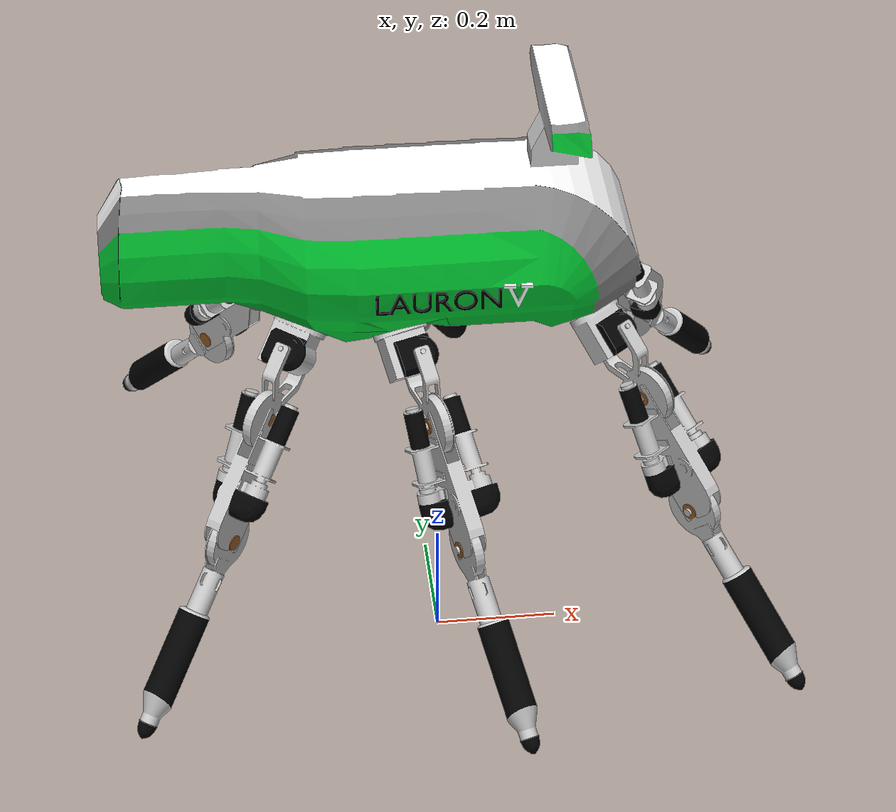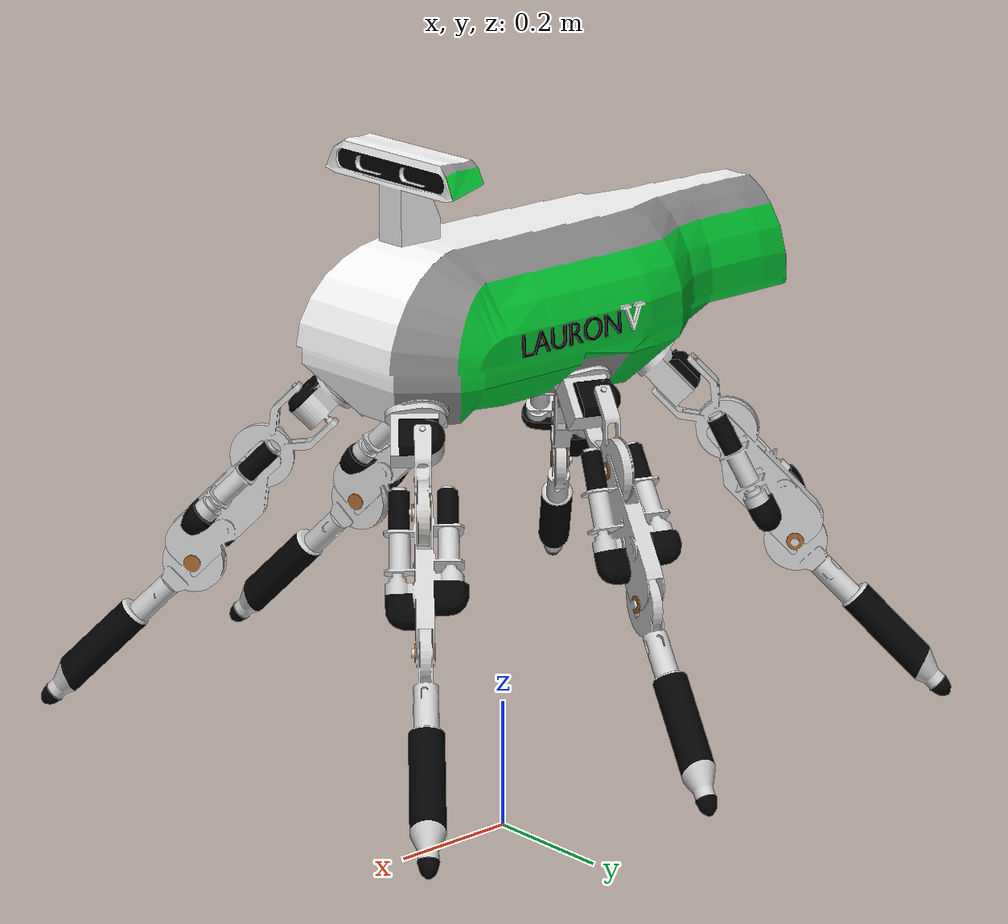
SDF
<sdf version='1.5'>
  <model name='lauron'>
    <pose>0 0 0.8 0 -0 0</pose>
    <link name='robot_base_link'>
      <pose>0 0 0 0 -0 0</pose>
      <inertial>
        <pose>-0.0047041 -4.81868e-19 -0.0187383 0 -0 0</pose>
        <mass>18</mass>
        <inertia>
          <ixx>0.127182</ixx>
          <ixy>4.08016e-20</ixy>
          <ixz>-0.00317329</ixz>
          <iyy>0.278404</iyy>
          <iyz>1.62529e-19</iyz>
          <izz>0.310305</izz>
        </inertia>
      </inertial>
      <collision name='robot_base_link_collision'>
        <pose>-0.12 0 0.025 0 -0 0</pose>
        <geometry>
          <box>
            <size>0.85 0.37 0.26</size>
          </box>
        </geometry>
      </collision>
      <visual name='robot_base_link_visual'>
        <pose>0 0 0 0 -0 0</pose>
        <geometry>
          <mesh>
            <scale>1 1 1</scale>
            <uri>model://lauron_model/meshes/TORSO_low.dae</uri>
          </mesh>
        </geometry>
      </visual>
      <visual name='robot_base_link_visual_robot_base_link_1'>
        <pose>0.22841 0.0806665 -0.056215 -1.57079 0.785404 0.872672</pose>
        <geometry>
          <mesh>
            <scale>1 1 1</scale>
            <uri>model://lauron_model/meshes/leg/LEG_CON_low.dae</uri>
          </mesh>
        </geometry>
      </visual>
      <visual name='robot_base_link_visual_robot_base_link_2'>
        <pose>0.22841 -0.0806665 -0.056215 -1.57079 0.785404 -0.872664</pose>
        <geometry>
          <mesh>
            <scale>1 1 1</scale>
            <uri>model://lauron_model/meshes/leg/LEG_CON_low.dae</uri>
          </mesh>
        </geometry>
      </visual>
      <visual name='robot_base_link_visual_robot_base_link_3'>
        <pose>-0.0673369 0.0962107 -0.056215 -1.57079 0.785404 1.22174</pose>
        <geometry>
          <mesh>
            <scale>1 1 1</scale>
            <uri>model://lauron_model/meshes/leg/LEG_CON_low.dae</uri>
          </mesh>
        </geometry>
      </visual>
      <visual name='robot_base_link_visual_robot_base_link_4'>
        <pose>-0.0673369 -0.0962107 -0.056215 -1.57079 0.785404 -1.22172</pose>
        <geometry>
          <mesh>
            <scale>1 1 1</scale>
            <uri>model://lauron_model/meshes/leg/LEG_CON_low.dae</uri>
          </mesh>
        </geometry>
      </visual>
      <visual name='robot_base_link_visual_robot_base_link_5'>
        <pose>-0.20341 0.0806665 -0.056215 -1.57079 0.785404 2.26893</pose>
        <geometry>
          <mesh>
            <scale>1 1 1</scale>
            <uri>model://lauron_model/meshes/leg/LEG_CON_low.dae</uri>
          </mesh>
        </geometry>
      </visual>
      <visual name='robot_base_link_visual_robot_base_link_6'>
        <pose>-0.20341 -0.0806665 -0.056215 -1.57079 0.785404 -2.26892</pose>
        <geometry>
          <mesh>
            <scale>1 1 1</scale>
            <uri>model://lauron_model/meshes/leg/LEG_CON_low.dae</uri>
          </mesh>
        </geometry>
      </visual>
    </link>
    <link name='robot_base_imu_pitch_link'>
      <pose>0 0 0 0 -0 0</pose>
      <inertial>
        <pose>0 0 0 0 -0 0</pose>
        <mass>0.0001</mass>
        <inertia>
          <ixx>0.01</ixx>
          <ixy>0</ixy>
          <ixz>0</ixz>
          <iyy>0.01</iyy>
          <iyz>0</iyz>
          <izz>0.01</izz>
        </inertia>
      </inertial>
    </link>
    <joint name='robot_IMU_pitch_joint' type='revolute'>
      <child>robot_base_imu_pitch_link</child>
      <parent>robot_base_link</parent>
      <axis>
        <xyz>0 -1 0</xyz>
        <limit>
          <lower>-3.14</lower>
          <upper>3.14</upper>
          <effort>0</effort>
          <velocity>10</velocity>
        </limit>
        <dynamics>
          <spring_reference>0</spring_reference>
          <spring_stiffness>0</spring_stiffness>
        </dynamics>
        <use_parent_model_frame>1</use_parent_model_frame>
      </axis>
    </joint>
    <link name='robot_base_leveled_link'>
      <pose>0 0 0 0 -0 0</pose>
      <inertial>
        <pose>0 0 0 0 -0 0</pose>
        <mass>0.0001</mass>
        <inertia>
          <ixx>0.01</ixx>
          <ixy>0</ixy>
          <ixz>0</ixz>
          <iyy>0.01</iyy>
          <iyz>0</iyz>
          <izz>0.01</izz>
        </inertia>
      </inertial>
    </link>
    <joint name='robot_IMU_roll_joint' type='revolute'>
      <child>robot_base_leveled_link</child>
      <parent>robot_base_imu_pitch_link</parent>
      <axis>
        <xyz>-1 0 0</xyz>
        <limit>
          <lower>-3.14</lower>
          <upper>3.14</upper>
          <effort>0</effort>
          <velocity>10</velocity>
        </limit>
        <dynamics>
          <spring_reference>0</spring_reference>
          <spring_stiffness>0</spring_stiffness>
        </dynamics>
        <use_parent_model_frame>1</use_parent_model_frame>
      </axis>
    </joint>
    <link name='robot_leg0_delta_link'>
      <pose>0.22841 0.0806665 -0.056215 -2.3562 1.53957e-17 -0.69813</pose>
      <inertial>
        <pose>0 0 0 0 -0 0</pose>
        <mass>1</mass>
        <inertia>
          <ixx>0.01</ixx>
          <ixy>0</ixy>
          <ixz>0</ixz>
          <iyy>0.01</iyy>
          <iyz>0</iyz>
          <izz>0.01</izz>
        </inertia>
      </inertial>
      <visual name='robot_leg0_delta_link_visual'>
        <pose>0 0 0.0721 0 -0 0</pose>
        <geometry>
          <mesh>
            <scale>1 1 1</scale>
            <uri>model://lauron_model/meshes/leg/DELTA_low.dae</uri>
          </mesh>
        </geometry>
      </visual>
    </link>
    <joint name='robot_leg0_delta_joint' type='revolute'>
      <child>robot_leg0_delta_link</child>
      <parent>robot_base_link</parent>
      <axis>
        <xyz>0.454516 0.541673 -0.707111</xyz>
        <limit>
          <lower>-1.22173</lower>
          <upper>1.22173</upper>
          <effort>100</effort>
          <velocity>10</velocity>
        </limit>
        <dynamics>
          <spring_reference>0</spring_reference>
          <spring_stiffness>0</spring_stiffness>
        </dynamics>
        <use_parent_model_frame>1</use_parent_model_frame>
      </axis>
    </joint>
    <link name='robot_leg0_alpha_link'>
      <pose>0.261181 0.119721 -0.107198 -0.7854 -2.20635e-17 -0.69813</pose>
      <inertial>
        <pose>0 0.00108614 0 0 -0 0</pose>
        <mass>1.01</mass>
        <inertia>
          <ixx>0.0201191</ixx>
          <ixy>0</ixy>
          <ixz>0</ixz>
          <iyy>0.02</iyy>
          <iyz>5.48977e-24</iyz>
          <izz>0.0201191</izz>
        </inertia>
      </inertial>
      <visual name='robot_leg0_alpha_link_visual'>
        <pose>0 0 0 0 -0 1.5708</pose>
        <geometry>
          <mesh>
            <scale>1 1 1</scale>
            <uri>model://lauron_model/meshes/leg/ALPHA_low.dae</uri>
          </mesh>
        </geometry>
      </visual>
    </link>
    <joint name='robot_leg0_alpha_joint' type='revolute'>
      <child>robot_leg0_alpha_link</child>
      <parent>robot_leg0_delta_link</parent>
      <axis>
        <xyz>0.454519 0.541677 0.707105</xyz>
        <limit>
          <lower>-1.22173</lower>
          <upper>1.22173</upper>
          <effort>100</effort>
          <velocity>10</velocity>
        </limit>
        <dynamics>
          <spring_reference>0</spring_reference>
          <spring_stiffness>0</spring_stiffness>
        </dynamics>
        <use_parent_model_frame>1</use_parent_model_frame>
      </axis>
    </joint>
    <link name='robot_leg0_beta_link'>
      <pose>0.311041 0.179143 -0.184767 1.5708 0.785396 0.872672</pose>
      <inertial>
        <pose>0 0 0 0 -0 0</pose>
        <mass>1</mass>
        <inertia>
          <ixx>0.01</ixx>
          <ixy>0</ixy>
          <ixz>0</ixz>
          <iyy>0.01</iyy>
          <iyz>0</iyz>
          <izz>0.01</izz>
        </inertia>
      </inertial>
      <collision name='robot_leg0_beta_link_collision'>
        <pose>0.085 -0.01 0 0 -0 0</pose>
        <geometry>
          <box>
            <size>0.22 0.12 0.03</size>
          </box>
        </geometry>
      </collision>
      <visual name='robot_leg0_beta_link_visual'>
        <pose>0 0 0 0 -0 0</pose>
        <geometry>
          <mesh>
            <scale>1 1 1</scale>
            <uri>model://lauron_model/meshes/leg/BETA_low.dae</uri>
          </mesh>
        </geometry>
      </visual>
    </link>
    <joint name='robot_leg0_beta_joint' type='revolute'>
      <child>robot_leg0_beta_link</child>
      <parent>robot_leg0_alpha_link</parent>
      <axis>
        <xyz>0.766047 -0.642784 -2.59734e-06</xyz>
        <limit>
          <lower>-0.69813</lower>
          <upper>2.21657</upper>
          <effort>100</effort>
          <velocity>10</velocity>
        </limit>
        <dynamics>
          <spring_reference>0</spring_reference>
          <spring_stiffness>0</spring_stiffness>
        </dynamics>
        <use_parent_model_frame>1</use_parent_model_frame>
      </axis>
    </joint>
    <link name='robot_leg0_gamma_link'>
      <pose>0.379719 0.260991 -0.353695 1.5708 0.785396 0.872672</pose>
      <inertial>
        <pose>0.00331683 0 0 0 -0 0</pose>
        <mass>1.01</mass>
        <inertia>
          <ixx>0.02</ixx>
          <ixy>0</ixy>
          <ixz>0</ixz>
          <iyy>0.0211111</iyy>
          <iyz>0</iyz>
          <izz>0.0211111</izz>
        </inertia>
      </inertial>
      <collision name='robot_leg0_gamma_link_collision'>
        <pose>0.16 0.004 0 0 1.57 0</pose>
        <geometry>
          <cylinder>
            <length>0.22</length>
            <radius>0.03</radius>
          </cylinder>
        </geometry>
      </collision>
      <collision name='robot_leg0_gamma_link_collision_robot_leg0_gamma_link_1'>
        <pose>0.32 0 0 0 -0 0</pose>
        <geometry>
          <sphere>
            <radius>0.02</radius>
          </sphere>
        </geometry>
      </collision>
      <visual name='robot_leg0_gamma_link_visual'>
        <pose>0 0 0 0 -0 0</pose>
        <geometry>
          <mesh>
            <scale>1 1 1</scale>
            <uri>model://lauron_model/meshes/leg/GAMMA_low.dae</uri>
          </mesh>
        </geometry>
      </visual>
    </link>
    <joint name='robot_leg0_gamma_joint' type='revolute'>
      <child>robot_leg0_gamma_link</child>
      <parent>robot_leg0_beta_link</parent>
      <axis>
        <xyz>0.766047 -0.642784 -2.59734e-06</xyz>
        <limit>
          <lower>-2.6529</lower>
          <upper>0.24435</upper>
          <effort>100</effort>
          <velocity>10</velocity>
        </limit>
        <dynamics>
          <spring_reference>0</spring_reference>
          <spring_stiffness>0</spring_stiffness>
        </dynamics>
        <use_parent_model_frame>1</use_parent_model_frame>
      </axis>
    </joint>
    <link name='robot_leg1_delta_link'>
      <pose>0.22841 -0.0806665 -0.056215 -2.3562 -3.16587e-17 -2.44347</pose>
      <inertial>
        <pose>0 0 0 0 -0 0</pose>
        <mass>1</mass>
        <inertia>
          <ixx>0.01</ixx>
          <ixy>0</ixy>
          <ixz>0</ixz>
          <iyy>0.01</iyy>
          <iyz>0</iyz>
          <izz>0.01</izz>
        </inertia>
      </inertial>
      <visual name='robot_leg1_delta_link_visual'>
        <pose>0 0 0.0721 0 -0 0</pose>
        <geometry>
          <mesh>
            <scale>1 1 1</scale>
            <uri>model://lauron_model/meshes/leg/DELTA_low.dae</uri>
          </mesh>
        </geometry>
      </visual>
    </link>
    <joint name='robot_leg1_delta_joint' type='revolute'>
      <child>robot_leg1_delta_link</child>
      <parent>robot_base_link</parent>
      <axis>
        <xyz>0.454515 -0.541674 -0.707111</xyz>
        <limit>
          <lower>-1.22173</lower>
          <upper>1.22173</upper>
          <effort>100</effort>
          <velocity>10</velocity>
        </limit>
        <dynamics>
          <spring_reference>0</spring_reference>
          <spring_stiffness>0</spring_stiffness>
        </dynamics>
        <use_parent_model_frame>1</use_parent_model_frame>
      </axis>
    </joint>
    <link name='robot_leg1_alpha_link'>
      <pose>0.261181 -0.119721 -0.107198 -0.7854 2.45301e-17 -2.44347</pose>
      <inertial>
        <pose>0 0.00108614 0 0 -0 0</pose>
        <mass>1.01</mass>
        <inertia>
          <ixx>0.0201191</ixx>
          <ixy>0</ixy>
          <ixz>0</ixz>
          <iyy>0.02</iyy>
          <iyz>5.48977e-24</iyz>
          <izz>0.0201191</izz>
        </inertia>
      </inertial>
      <visual name='robot_leg1_alpha_link_visual'>
        <pose>0 0 0 0 -0 1.5708</pose>
        <geometry>
          <mesh>
            <scale>1 1 1</scale>
            <uri>model://lauron_model/meshes/leg/ALPHA_low.dae</uri>
          </mesh>
        </geometry>
      </visual>
    </link>
    <joint name='robot_leg1_alpha_joint' type='revolute'>
      <child>robot_leg1_alpha_link</child>
      <parent>robot_leg1_delta_link</parent>
      <axis>
        <xyz>0.454518 -0.541678 0.707105</xyz>
        <limit>
          <lower>-1.22173</lower>
          <upper>1.22173</upper>
          <effort>100</effort>
          <velocity>10</velocity>
        </limit>
        <dynamics>
          <spring_reference>0</spring_reference>
          <spring_stiffness>0</spring_stiffness>
        </dynamics>
        <use_parent_model_frame>1</use_parent_model_frame>
      </axis>
    </joint>
    <link name='robot_leg1_beta_link'>
      <pose>0.311041 -0.179143 -0.184767 1.5708 0.785396 -0.872664</pose>
      <inertial>
        <pose>0 0 0 0 -0 0</pose>
        <mass>1</mass>
        <inertia>
          <ixx>0.01</ixx>
          <ixy>0</ixy>
          <ixz>0</ixz>
          <iyy>0.01</iyy>
          <iyz>0</iyz>
          <izz>0.01</izz>
        </inertia>
      </inertial>
      <collision name='robot_leg1_beta_link_collision'>
        <pose>0.085 -0.01 0 0 -0 0</pose>
        <geometry>
          <box>
            <size>0.22 0.12 0.03</size>
          </box>
        </geometry>
      </collision>
      <visual name='robot_leg1_beta_link_visual'>
        <pose>0 0 0 0 -0 0</pose>
        <geometry>
          <mesh>
            <scale>1 1 1</scale>
            <uri>model://lauron_model/meshes/leg/BETA_low.dae</uri>
          </mesh>
        </geometry>
      </visual>
    </link>
    <joint name='robot_leg1_beta_joint' type='revolute'>
      <child>robot_leg1_beta_link</child>
      <parent>robot_leg1_alpha_link</parent>
      <axis>
        <xyz>-0.766046 -0.642786 -2.59734e-06</xyz>
        <limit>
          <lower>-0.69813</lower>
          <upper>2.21657</upper>
          <effort>100</effort>
          <velocity>10</velocity>
        </limit>
        <dynamics>
          <spring_reference>0</spring_reference>
          <spring_stiffness>0</spring_stiffness>
        </dynamics>
        <use_parent_model_frame>1</use_parent_model_frame>
      </axis>
    </joint>
    <link name='robot_leg1_gamma_link'>
      <pose>0.379719 -0.26099 -0.353695 1.5708 0.785396 -0.872664</pose>
      <inertial>
        <pose>0.00331683 0 0 0 -0 0</pose>
        <mass>1.01</mass>
        <inertia>
          <ixx>0.02</ixx>
          <ixy>0</ixy>
          <ixz>0</ixz>
          <iyy>0.0211111</iyy>
          <iyz>0</iyz>
          <izz>0.0211111</izz>
        </inertia>
      </inertial>
      <collision name='robot_leg1_gamma_link_collision'>
        <pose>0.16 0.004 0 0 1.57 0</pose>
        <geometry>
          <cylinder>
            <length>0.22</length>
            <radius>0.03</radius>
          </cylinder>
        </geometry>
      </collision>
      <collision name='robot_leg1_gamma_link_collision_robot_leg1_gamma_link_1'>
        <pose>0.32 0 0 0 -0 0</pose>
        <geometry>
          <sphere>
            <radius>0.02</radius>
          </sphere>
        </geometry>
      </collision>
      <visual name='robot_leg1_gamma_link_visual'>
        <pose>0 0 0 0 -0 0</pose>
        <geometry>
          <mesh>
            <scale>1 1 1</scale>
            <uri>model://lauron_model/meshes/leg/GAMMA_low.dae</uri>
          </mesh>
        </geometry>
      </visual>
    </link>
    <joint name='robot_leg1_gamma_joint' type='revolute'>
      <child>robot_leg1_gamma_link</child>
      <parent>robot_leg1_beta_link</parent>
      <axis>
        <xyz>-0.766046 -0.642786 -2.59734e-06</xyz>
        <limit>
          <lower>-2.6529</lower>
          <upper>0.24435</upper>
          <effort>100</effort>
          <velocity>10</velocity>
        </limit>
        <dynamics>
          <spring_reference>0</spring_reference>
          <spring_stiffness>0</spring_stiffness>
        </dynamics>
        <use_parent_model_frame>1</use_parent_model_frame>
      </axis>
    </joint>
    <link name='robot_leg2_delta_link'>
      <pose>-0.0673369 0.0962107 -0.056215 -2.3562 1.35525e-18 -0.349066</pose>
      <inertial>
        <pose>0 0 0 0 -0 0</pose>
        <mass>1</mass>
        <inertia>
          <ixx>0.01</ixx>
          <ixy>0</ixy>
          <ixz>0</ixz>
          <iyy>0.01</iyy>
          <iyz>0</iyz>
          <izz>0.01</izz>
        </inertia>
      </inertial>
      <visual name='robot_leg2_delta_link_visual'>
        <pose>0 0 0.0721 0 -0 0</pose>
        <geometry>
          <mesh>
            <scale>1 1 1</scale>
            <uri>model://lauron_model/meshes/leg/DELTA_low.dae</uri>
          </mesh>
        </geometry>
      </visual>
    </link>
    <joint name='robot_leg2_delta_joint' type='revolute'>
      <child>robot_leg2_delta_link</child>
      <parent>robot_base_link</parent>
      <axis>
        <xyz>0.241844 0.664459 -0.707111</xyz>
        <limit>
          <lower>-1.22173</lower>
          <upper>1.22173</upper>
          <effort>100</effort>
          <velocity>10</velocity>
        </limit>
        <dynamics>
          <spring_reference>0</spring_reference>
          <spring_stiffness>0</spring_stiffness>
        </dynamics>
        <use_parent_model_frame>1</use_parent_model_frame>
      </axis>
    </joint>
    <link name='robot_leg2_alpha_link'>
      <pose>-0.0499 0.144118 -0.107198 -0.7854 -1.23667e-17 -0.349066</pose>
      <inertial>
        <pose>0 0.00108614 0 0 -0 0</pose>
        <mass>1.01</mass>
        <inertia>
          <ixx>0.0201191</ixx>
          <ixy>0</ixy>
          <ixz>0</ixz>
          <iyy>0.02</iyy>
          <iyz>5.48977e-24</iyz>
          <izz>0.0201191</izz>
        </inertia>
      </inertial>
      <visual name='robot_leg2_alpha_link_visual'>
        <pose>0 0 0 0 -0 1.5708</pose>
        <geometry>
          <mesh>
            <scale>1 1 1</scale>
            <uri>model://lauron_model/meshes/leg/ALPHA_low.dae</uri>
          </mesh>
        </geometry>
      </visual>
    </link>
    <joint name='robot_leg2_alpha_joint' type='revolute'>
      <child>robot_leg2_alpha_link</child>
      <parent>robot_leg2_delta_link</parent>
      <axis>
        <xyz>0.241845 0.664464 0.707105</xyz>
        <limit>
          <lower>-1.22173</lower>
          <upper>1.22173</upper>
          <effort>100</effort>
          <velocity>10</velocity>
        </limit>
        <dynamics>
          <spring_reference>0</spring_reference>
          <spring_stiffness>0</spring_stiffness>
        </dynamics>
        <use_parent_model_frame>1</use_parent_model_frame>
      </axis>
    </joint>
    <link name='robot_leg2_beta_link'>
      <pose>-0.0233696 0.21701 -0.184767 1.5708 0.785396 1.22174</pose>
      <inertial>
        <pose>0 0 0 0 -0 0</pose>
        <mass>1</mass>
        <inertia>
          <ixx>0.01</ixx>
          <ixy>0</ixy>
          <ixz>0</ixz>
          <iyy>0.01</iyy>
          <iyz>0</iyz>
          <izz>0.01</izz>
        </inertia>
      </inertial>
      <collision name='robot_leg2_beta_link_collision'>
        <pose>0.085 -0.01 0 0 -0 0</pose>
        <geometry>
          <box>
            <size>0.22 0.12 0.03</size>
          </box>
        </geometry>
      </collision>
      <visual name='robot_leg2_beta_link_visual'>
        <pose>0 0 0 0 -0 0</pose>
        <geometry>
          <mesh>
            <scale>1 1 1</scale>
            <uri>model://lauron_model/meshes/leg/BETA_low.dae</uri>
          </mesh>
        </geometry>
      </visual>
    </link>
    <joint name='robot_leg2_beta_joint' type='revolute'>
      <child>robot_leg2_beta_link</child>
      <parent>robot_leg2_alpha_link</parent>
      <axis>
        <xyz>0.939693 -0.342018 -2.59734e-06</xyz>
        <limit>
          <lower>-0.69813</lower>
          <upper>2.21657</upper>
          <effort>100</effort>
          <velocity>10</velocity>
        </limit>
        <dynamics>
          <spring_reference>0</spring_reference>
          <spring_stiffness>0</spring_stiffness>
        </dynamics>
        <use_parent_model_frame>1</use_parent_model_frame>
      </axis>
    </joint>
    <link name='robot_leg2_gamma_link'>
      <pose>0.0131725 0.317411 -0.353695 1.5708 0.785396 1.22174</pose>
      <inertial>
        <pose>0.00331683 0 0 0 -0 0</pose>
        <mass>1.01</mass>
        <inertia>
          <ixx>0.02</ixx>
          <ixy>0</ixy>
          <ixz>0</ixz>
          <iyy>0.0211111</iyy>
          <iyz>0</iyz>
          <izz>0.0211111</izz>
        </inertia>
      </inertial>
      <collision name='robot_leg2_gamma_link_collision'>
        <pose>0.16 0.004 0 0 1.57 0</pose>
        <geometry>
          <cylinder>
            <length>0.22</length>
            <radius>0.03</radius>
          </cylinder>
        </geometry>
      </collision>
      <collision name='robot_leg2_gamma_link_collision_robot_leg2_gamma_link_1'>
        <pose>0.32 0 0 0 -0 0</pose>
        <geometry>
          <sphere>
            <radius>0.02</radius>
          </sphere>
        </geometry>
      </collision>
      <visual name='robot_leg2_gamma_link_visual'>
        <pose>0 0 0 0 -0 0</pose>
        <geometry>
          <mesh>
            <scale>1 1 1</scale>
            <uri>model://lauron_model/meshes/leg/GAMMA_low.dae</uri>
          </mesh>
        </geometry>
      </visual>
    </link>
    <joint name='robot_leg2_gamma_joint' type='revolute'>
      <child>robot_leg2_gamma_link</child>
      <parent>robot_leg2_beta_link</parent>
      <axis>
        <xyz>0.939693 -0.342018 -2.59734e-06</xyz>
        <limit>
          <lower>-2.6529</lower>
          <upper>0.24435</upper>
          <effort>100</effort>
          <velocity>10</velocity>
        </limit>
        <dynamics>
          <spring_reference>0</spring_reference>
          <spring_stiffness>0</spring_stiffness>
        </dynamics>
        <use_parent_model_frame>1</use_parent_model_frame>
      </axis>
    </joint>
    <link name='robot_leg3_delta_link'>
      <pose>-0.0673369 -0.0962107 -0.056215 -2.3562 9.52743e-18 -2.79253</pose>
      <inertial>
        <pose>0 0 0 0 -0 0</pose>
        <mass>1</mass>
        <inertia>
          <ixx>0.01</ixx>
          <ixy>0</ixy>
          <ixz>0</ixz>
          <iyy>0.01</iyy>
          <iyz>0</iyz>
          <izz>0.01</izz>
        </inertia>
      </inertial>
      <visual name='robot_leg3_delta_link_visual'>
        <pose>0 0 0.0721 0 -0 0</pose>
        <geometry>
          <mesh>
            <scale>1 1 1</scale>
            <uri>model://lauron_model/meshes/leg/DELTA_low.dae</uri>
          </mesh>
        </geometry>
      </visual>
    </link>
    <joint name='robot_leg3_delta_joint' type='revolute'>
      <child>robot_leg3_delta_link</child>
      <parent>robot_base_link</parent>
      <axis>
        <xyz>0.241844 -0.664459 -0.707111</xyz>
        <limit>
          <lower>-1.22173</lower>
          <upper>1.22173</upper>
          <effort>100</effort>
          <velocity>10</velocity>
        </limit>
        <dynamics>
          <spring_reference>0</spring_reference>
          <spring_stiffness>0</spring_stiffness>
        </dynamics>
        <use_parent_model_frame>1</use_parent_model_frame>
      </axis>
    </joint>
    <link name='robot_leg3_alpha_link'>
      <pose>-0.0498999 -0.144118 -0.107198 -0.7854 -2.85281e-17 -2.79253</pose>
      <inertial>
        <pose>0 0.00108614 0 0 -0 0</pose>
        <mass>1.01</mass>
        <inertia>
          <ixx>0.0201191</ixx>
          <ixy>0</ixy>
          <ixz>0</ixz>
          <iyy>0.02</iyy>
          <iyz>5.48977e-24</iyz>
          <izz>0.0201191</izz>
        </inertia>
      </inertial>
      <visual name='robot_leg3_alpha_link_visual'>
        <pose>0 0 0 0 -0 1.5708</pose>
        <geometry>
          <mesh>
            <scale>1 1 1</scale>
            <uri>model://lauron_model/meshes/leg/ALPHA_low.dae</uri>
          </mesh>
        </geometry>
      </visual>
    </link>
    <joint name='robot_leg3_alpha_joint' type='revolute'>
      <child>robot_leg3_alpha_link</child>
      <parent>robot_leg3_delta_link</parent>
      <axis>
        <xyz>0.241846 -0.664464 0.707105</xyz>
        <limit>
          <lower>-1.22173</lower>
          <upper>1.22173</upper>
          <effort>100</effort>
          <velocity>10</velocity>
        </limit>
        <dynamics>
          <spring_reference>0</spring_reference>
          <spring_stiffness>0</spring_stiffness>
        </dynamics>
        <use_parent_model_frame>1</use_parent_model_frame>
      </axis>
    </joint>
    <link name='robot_leg3_beta_link'>
      <pose>-0.0233695 -0.21701 -0.184767 1.5708 0.785396 -1.22172</pose>
      <inertial>
        <pose>0 0 0 0 -0 0</pose>
        <mass>1</mass>
        <inertia>
          <ixx>0.01</ixx>
          <ixy>0</ixy>
          <ixz>0</ixz>
          <iyy>0.01</iyy>
          <iyz>0</iyz>
          <izz>0.01</izz>
        </inertia>
      </inertial>
      <collision name='robot_leg3_beta_link_collision'>
        <pose>0.085 -0.01 0 0 -0 0</pose>
        <geometry>
          <box>
            <size>0.22 0.12 0.03</size>
          </box>
        </geometry>
      </collision>
      <visual name='robot_leg3_beta_link_visual'>
        <pose>0 0 0 0 -0 0</pose>
        <geometry>
          <mesh>
            <scale>1 1 1</scale>
            <uri>model://lauron_model/meshes/leg/BETA_low.dae</uri>
          </mesh>
        </geometry>
      </visual>
    </link>
    <joint name='robot_leg3_beta_joint' type='revolute'>
      <child>robot_leg3_beta_link</child>
      <parent>robot_leg3_alpha_link</parent>
      <axis>
        <xyz>-0.939691 -0.342024 -2.59734e-06</xyz>
        <limit>
          <lower>-0.69813</lower>
          <upper>2.21657</upper>
          <effort>100</effort>
          <velocity>10</velocity>
        </limit>
        <dynamics>
          <spring_reference>0</spring_reference>
          <spring_stiffness>0</spring_stiffness>
        </dynamics>
        <use_parent_model_frame>1</use_parent_model_frame>
      </axis>
    </joint>
    <link name='robot_leg3_gamma_link'>
      <pose>0.0131742 -0.31741 -0.353695 1.5708 0.785396 -1.22172</pose>
      <inertial>
        <pose>0.00331683 0 0 0 -0 0</pose>
        <mass>1.01</mass>
        <inertia>
          <ixx>0.02</ixx>
          <ixy>0</ixy>
          <ixz>0</ixz>
          <iyy>0.0211111</iyy>
          <iyz>0</iyz>
          <izz>0.0211111</izz>
        </inertia>
      </inertial>
      <collision name='robot_leg3_gamma_link_collision'>
        <pose>0.16 0.004 0 0 1.57 0</pose>
        <geometry>
          <cylinder>
            <length>0.22</length>
            <radius>0.03</radius>
          </cylinder>
        </geometry>
      </collision>
      <collision name='robot_leg3_gamma_link_collision_robot_leg3_gamma_link_1'>
        <pose>0.32 0 0 0 -0 0</pose>
        <geometry>
          <sphere>
            <radius>0.02</radius>
          </sphere>
        </geometry>
      </collision>
      <visual name='robot_leg3_gamma_link_visual'>
        <pose>0 0 0 0 -0 0</pose>
        <geometry>
          <mesh>
            <scale>1 1 1</scale>
            <uri>model://lauron_model/meshes/leg/GAMMA_low.dae</uri>
          </mesh>
        </geometry>
      </visual>
    </link>
    <joint name='robot_leg3_gamma_joint' type='revolute'>
      <child>robot_leg3_gamma_link</child>
      <parent>robot_leg3_beta_link</parent>
      <axis>
        <xyz>-0.939691 -0.342024 -2.59734e-06</xyz>
        <limit>
          <lower>-2.6529</lower>
          <upper>0.24435</upper>
          <effort>100</effort>
          <velocity>10</velocity>
        </limit>
        <dynamics>
          <spring_reference>0</spring_reference>
          <spring_stiffness>0</spring_stiffness>
        </dynamics>
        <use_parent_model_frame>1</use_parent_model_frame>
      </axis>
    </joint>
    <link name='robot_leg4_delta_link'>
      <pose>-0.20341 0.0806665 -0.056215 -2.3562 4.17011e-17 0.698132</pose>
      <inertial>
        <pose>0 0 0 0 -0 0</pose>
        <mass>1</mass>
        <inertia>
          <ixx>0.01</ixx>
          <ixy>0</ixy>
          <ixz>0</ixz>
          <iyy>0.01</iyy>
          <iyz>0</iyz>
          <izz>0.01</izz>
        </inertia>
      </inertial>
      <visual name='robot_leg4_delta_link_visual'>
        <pose>0 0 0.0721 0 -0 0</pose>
        <geometry>
          <mesh>
            <scale>1 1 1</scale>
            <uri>model://lauron_model/meshes/leg/DELTA_low.dae</uri>
          </mesh>
        </geometry>
      </visual>
    </link>
    <joint name='robot_leg4_delta_joint' type='revolute'>
      <child>robot_leg4_delta_link</child>
      <parent>robot_base_link</parent>
      <axis>
        <xyz>-0.454517 0.541672 -0.707111</xyz>
        <limit>
          <lower>-1.22173</lower>
          <upper>1.22173</upper>
          <effort>100</effort>
          <velocity>10</velocity>
        </limit>
        <dynamics>
          <spring_reference>0</spring_reference>
          <spring_stiffness>0</spring_stiffness>
        </dynamics>
        <use_parent_model_frame>1</use_parent_model_frame>
      </axis>
    </joint>
    <link name='robot_leg4_alpha_link'>
      <pose>-0.236181 0.119721 -0.107198 -0.7854 5.98751e-17 0.698132</pose>
      <inertial>
        <pose>0 0.00108614 0 0 -0 0</pose>
        <mass>1.01</mass>
        <inertia>
          <ixx>0.0201191</ixx>
          <ixy>0</ixy>
          <ixz>0</ixz>
          <iyy>0.02</iyy>
          <iyz>5.48977e-24</iyz>
          <izz>0.0201191</izz>
        </inertia>
      </inertial>
      <visual name='robot_leg4_alpha_link_visual'>
        <pose>0 0 0 0 -0 1.5708</pose>
        <geometry>
          <mesh>
            <scale>1 1 1</scale>
            <uri>model://lauron_model/meshes/leg/ALPHA_low.dae</uri>
          </mesh>
        </geometry>
      </visual>
    </link>
    <joint name='robot_leg4_alpha_joint' type='revolute'>
      <child>robot_leg4_alpha_link</child>
      <parent>robot_leg4_delta_link</parent>
      <axis>
        <xyz>-0.45452 0.541676 0.707105</xyz>
        <limit>
          <lower>-1.22173</lower>
          <upper>1.22173</upper>
          <effort>100</effort>
          <velocity>10</velocity>
        </limit>
        <dynamics>
          <spring_reference>0</spring_reference>
          <spring_stiffness>0</spring_stiffness>
        </dynamics>
        <use_parent_model_frame>1</use_parent_model_frame>
      </axis>
    </joint>
    <link name='robot_leg4_beta_link'>
      <pose>-0.286041 0.179143 -0.184767 1.5708 0.785396 2.26893</pose>
      <inertial>
        <pose>0 0 0 0 -0 0</pose>
        <mass>1</mass>
        <inertia>
          <ixx>0.01</ixx>
          <ixy>0</ixy>
          <ixz>0</ixz>
          <iyy>0.01</iyy>
          <iyz>0</iyz>
          <izz>0.01</izz>
        </inertia>
      </inertial>
      <collision name='robot_leg4_beta_link_collision'>
        <pose>0.085 -0.01 0 0 -0 0</pose>
        <geometry>
          <box>
            <size>0.22 0.12 0.03</size>
          </box>
        </geometry>
      </collision>
      <visual name='robot_leg4_beta_link_visual'>
        <pose>0 0 0 0 -0 0</pose>
        <geometry>
          <mesh>
            <scale>1 1 1</scale>
            <uri>model://lauron_model/meshes/leg/BETA_low.dae</uri>
          </mesh>
        </geometry>
      </visual>
    </link>
    <joint name='robot_leg4_beta_joint' type='revolute'>
      <child>robot_leg4_beta_link</child>
      <parent>robot_leg4_alpha_link</parent>
      <axis>
        <xyz>0.766043 0.64279 -2.59734e-06</xyz>
        <limit>
          <lower>-0.69813</lower>
          <upper>2.21657</upper>
          <effort>100</effort>
          <velocity>10</velocity>
        </limit>
        <dynamics>
          <spring_reference>0</spring_reference>
          <spring_stiffness>0</spring_stiffness>
        </dynamics>
        <use_parent_model_frame>1</use_parent_model_frame>
      </axis>
    </joint>
    <link name='robot_leg4_gamma_link'>
      <pose>-0.35472 0.26099 -0.353695 1.5708 0.785396 2.26893</pose>
      <inertial>
        <pose>0.00331683 0 0 0 -0 0</pose>
        <mass>1.01</mass>
        <inertia>
          <ixx>0.02</ixx>
          <ixy>0</ixy>
          <ixz>0</ixz>
          <iyy>0.0211111</iyy>
          <iyz>0</iyz>
          <izz>0.0211111</izz>
        </inertia>
      </inertial>
      <collision name='robot_leg4_gamma_link_collision'>
        <pose>0.16 0.004 0 0 1.57 0</pose>
        <geometry>
          <cylinder>
            <length>0.22</length>
            <radius>0.03</radius>
          </cylinder>
        </geometry>
      </collision>
      <collision name='robot_leg4_gamma_link_collision_robot_leg4_gamma_link_1'>
        <pose>0.32 0 0 0 -0 0</pose>
        <geometry>
          <sphere>
            <radius>0.02</radius>
          </sphere>
        </geometry>
      </collision>
      <visual name='robot_leg4_gamma_link_visual'>
        <pose>0 0 0 0 -0 0</pose>
        <geometry>
          <mesh>
            <scale>1 1 1</scale>
            <uri>model://lauron_model/meshes/leg/GAMMA_low.dae</uri>
          </mesh>
        </geometry>
      </visual>
    </link>
    <joint name='robot_leg4_gamma_joint' type='revolute'>
      <child>robot_leg4_gamma_link</child>
      <parent>robot_leg4_beta_link</parent>
      <axis>
        <xyz>0.766043 0.64279 -2.59734e-06</xyz>
        <limit>
          <lower>-2.6529</lower>
          <upper>0.24435</upper>
          <effort>100</effort>
          <velocity>10</velocity>
        </limit>
        <dynamics>
          <spring_reference>0</spring_reference>
          <spring_stiffness>0</spring_stiffness>
        </dynamics>
        <use_parent_model_frame>1</use_parent_model_frame>
      </axis>
    </joint>
    <link name='robot_leg5_delta_link'>
      <pose>-0.20341 -0.0806665 -0.056215 -2.3562 -8.68853e-17 2.44346</pose>
      <inertial>
        <pose>0 0 0 0 -0 0</pose>
        <mass>1</mass>
        <inertia>
          <ixx>0.01</ixx>
          <ixy>0</ixy>
          <ixz>0</ixz>
          <iyy>0.01</iyy>
          <iyz>0</iyz>
          <izz>0.01</izz>
        </inertia>
      </inertial>
      <visual name='robot_leg5_delta_link_visual'>
        <pose>0 0 0.0721 0 -0 0</pose>
        <geometry>
          <mesh>
            <scale>1 1 1</scale>
            <uri>model://lauron_model/meshes/leg/DELTA_low.dae</uri>
          </mesh>
        </geometry>
      </visual>
    </link>
    <joint name='robot_leg5_delta_joint' type='revolute'>
      <child>robot_leg5_delta_link</child>
      <parent>robot_base_link</parent>
      <axis>
        <xyz>-0.454517 -0.541672 -0.707111</xyz>
        <limit>
          <lower>-1.22173</lower>
          <upper>1.22173</upper>
          <effort>100</effort>
          <velocity>10</velocity>
        </limit>
        <dynamics>
          <spring_reference>0</spring_reference>
          <spring_stiffness>0</spring_stiffness>
        </dynamics>
        <use_parent_model_frame>1</use_parent_model_frame>
      </axis>
    </joint>
    <link name='robot_leg5_alpha_link'>
      <pose>-0.236181 -0.119721 -0.107198 -0.7854 -6.63261e-17 2.44346</pose>
      <inertial>
        <pose>0 0.00108614 0 0 -0 0</pose>
        <mass>1.01</mass>
        <inertia>
          <ixx>0.0201191</ixx>
          <ixy>0</ixy>
          <ixz>0</ixz>
          <iyy>0.02</iyy>
          <iyz>5.48977e-24</iyz>
          <izz>0.0201191</izz>
        </inertia>
      </inertial>
      <visual name='robot_leg5_alpha_link_visual'>
        <pose>0 0 0 0 -0 1.5708</pose>
        <geometry>
          <mesh>
            <scale>1 1 1</scale>
            <uri>model://lauron_model/meshes/leg/ALPHA_low.dae</uri>
          </mesh>
        </geometry>
      </visual>
    </link>
    <joint name='robot_leg5_alpha_joint' type='revolute'>
      <child>robot_leg5_alpha_link</child>
      <parent>robot_leg5_delta_link</parent>
      <axis>
        <xyz>-0.454521 -0.541676 0.707105</xyz>
        <limit>
          <lower>-1.22173</lower>
          <upper>1.22173</upper>
          <effort>100</effort>
          <velocity>10</velocity>
        </limit>
        <dynamics>
          <spring_reference>0</spring_reference>
          <spring_stiffness>0</spring_stiffness>
        </dynamics>
        <use_parent_model_frame>1</use_parent_model_frame>
      </axis>
    </joint>
    <link name='robot_leg5_beta_link'>
      <pose>-0.286041 -0.179143 -0.184767 1.5708 0.785396 -2.26892</pose>
      <inertial>
        <pose>0 0 0 0 -0 0</pose>
        <mass>1</mass>
        <inertia>
          <ixx>0.01</ixx>
          <ixy>0</ixy>
          <ixz>0</ixz>
          <iyy>0.01</iyy>
          <iyz>0</iyz>
          <izz>0.01</izz>
        </inertia>
      </inertial>
      <collision name='robot_leg5_beta_link_collision'>
        <pose>0.085 -0.01 0 0 -0 0</pose>
        <geometry>
          <box>
            <size>0.22 0.12 0.03</size>
          </box>
        </geometry>
      </collision>
      <visual name='robot_leg5_beta_link_visual'>
        <pose>0 0 0 0 -0 0</pose>
        <geometry>
          <mesh>
            <scale>1 1 1</scale>
            <uri>model://lauron_model/meshes/leg/BETA_low.dae</uri>
          </mesh>
        </geometry>
      </visual>
    </link>
    <joint name='robot_leg5_beta_joint' type='revolute'>
      <child>robot_leg5_beta_link</child>
      <parent>robot_leg5_alpha_link</parent>
      <axis>
        <xyz>-0.766046 0.642786 -2.59734e-06</xyz>
        <limit>
          <lower>-0.69813</lower>
          <upper>2.21657</upper>
          <effort>100</effort>
          <velocity>10</velocity>
        </limit>
        <dynamics>
          <spring_reference>0</spring_reference>
          <spring_stiffness>0</spring_stiffness>
        </dynamics>
        <use_parent_model_frame>1</use_parent_model_frame>
      </axis>
    </joint>
    <link name='robot_leg5_gamma_link'>
      <pose>-0.354719 -0.26099 -0.353695 1.5708 0.785396 -2.26892</pose>
      <inertial>
        <pose>0.00331683 0 0 0 -0 0</pose>
        <mass>1.01</mass>
        <inertia>
          <ixx>0.02</ixx>
          <ixy>0</ixy>
          <ixz>0</ixz>
          <iyy>0.0211111</iyy>
          <iyz>0</iyz>
          <izz>0.0211111</izz>
        </inertia>
      </inertial>
      <collision name='robot_leg5_gamma_link_collision'>
        <pose>0.16 0.004 0 0 1.57 0</pose>
        <geometry>
          <cylinder>
            <length>0.22</length>
            <radius>0.03</radius>
          </cylinder>
        </geometry>
      </collision>
      <collision name='robot_leg5_gamma_link_collision_robot_leg5_gamma_link_1'>
        <pose>0.32 0 0 0 -0 0</pose>
        <geometry>
          <sphere>
            <radius>0.02</radius>
          </sphere>
        </geometry>
      </collision>
      <visual name='robot_leg5_gamma_link_visual'>
        <pose>0 0 0 0 -0 0</pose>
        <geometry>
          <mesh>
            <scale>1 1 1</scale>
            <uri>model://lauron_model/meshes/leg/GAMMA_low.dae</uri>
          </mesh>
        </geometry>
      </visual>
    </link>
    <joint name='robot_leg5_gamma_joint' type='revolute'>
      <child>robot_leg5_gamma_link</child>
      <parent>robot_leg5_beta_link</parent>
      <axis>
        <xyz>-0.766046 0.642786 -2.59734e-06</xyz>
        <limit>
          <lower>-2.6529</lower>
          <upper>0.24435</upper>
          <effort>100</effort>
          <velocity>10</velocity>
        </limit>
        <dynamics>
          <spring_reference>0</spring_reference>
          <spring_stiffness>0</spring_stiffness>
        </dynamics>
        <use_parent_model_frame>1</use_parent_model_frame>
      </axis>
    </joint>
    <link name='robot_ptu_pan_link'>
      <pose>0.2 0 0.15 0 -0 0</pose>
      <inertial>
        <pose>0 0 0 0 -0 0</pose>
        <mass>0.1</mass>
        <inertia>
          <ixx>0.01</ixx>
          <ixy>0</ixy>
          <ixz>0</ixz>
          <iyy>0.01</iyy>
          <iyz>0</iyz>
          <izz>0.01</izz>
        </inertia>
      </inertial>
      <collision name='robot_ptu_pan_link_collision'>
        <pose>-0.02 0 0.045 0 -0 0</pose>
        <geometry>
          <box>
            <size>0.06 0.06 0.08</size>
          </box>
        </geometry>
      </collision>
      <collision name='robot_ptu_pan_link_collision_robot_ptu_pan_link_1'>
        <pose>-0.01 0 0.1 0 -0 0</pose>
        <geometry>
          <box>
            <size>0.05 0.25 0.04</size>
          </box>
        </geometry>
      </collision>
      <visual name='robot_ptu_pan_link_visual'>
        <pose>0 0 0 0 -0 0</pose>
        <geometry>
          <mesh>
            <scale>1 1 1</scale>
            <uri>model://lauron_model/meshes/HEAD_low.dae</uri>
          </mesh>
        </geometry>
      </visual>
    </link>
    <joint name='robot_ptu_pan_joint' type='revolute'>
      <child>robot_ptu_pan_link</child>
      <parent>robot_base_link</parent>
      <axis>
        <xyz>0 0 1</xyz>
        <limit>
          <lower>0</lower>
          <upper>0</upper>
          <effort>200</effort>
          <velocity>2</velocity>
        </limit>
        <dynamics>
          <spring_reference>0</spring_reference>
          <spring_stiffness>0</spring_stiffness>
        </dynamics>
        <use_parent_model_frame>1</use_parent_model_frame>
      </axis>
    </joint>
    <link name='robot_ptu_tilt_link'>
      <pose>0.2 0 0.2505 0 -0 0</pose>
      <inertial>
        <pose>0 0 0.01175 0 -0 0</pose>
        <mass>0.4</mass>
        <inertia>
          <ixx>0.0409585</ixx>
          <ixy>0</ixy>
          <ixz>0</ixz>
          <iyy>0.0402505</iyy>
          <iyz>0</iyz>
          <izz>0.040708</izz>
        </inertia>
      </inertial>
      <velocity_decay/>
      <sensor name='left_camera' type='camera'>
        <update_rate>30</update_rate>
        <camera name='camera'>
          <horizontal_fov>1.047</horizontal_fov>
          <image>
            <width>320</width>
            <height>240</height>
          </image>
          <clip>
            <near>0.1</near>
            <far>100</far>
          </clip>
          <noise>
            <type>gaussian</type>
            <mean>0</mean>
            <stddev>0.007</stddev>
          </noise>
        </camera>
        <plugin name='robot_left_camera' filename='libgazebo_ros_camera.so'>
          <alwaysOn>true</alwaysOn>
          <updateRate>30.0</updateRate>
          <cameraName>left_camera</cameraName>
          <imageTopicName>robot_left_camera</imageTopicName>
          <cameraInfoTopicName>robot_left_camera_info</cameraInfoTopicName>
          <frameName>robot_left_camera_link</frameName>
          <hackBaseline>0.07</hackBaseline>
          <distortionK1>0.0</distortionK1>
          <distortionK2>0.0</distortionK2>
          <distortionK3>0.0</distortionK3>
          <distortionT1>0.0</distortionT1>
          <distortionT2>0.0</distortionT2>
        </plugin>
        <pose>0 0.0595 -0.004 0 -0 0</pose>
      </sensor>
      <gravity>1</gravity>
      <velocity_decay/>
      <self_collide>0</self_collide>
      <sensor name='right_camera' type='camera'>
        <update_rate>30</update_rate>
        <camera name='camera'>
          <horizontal_fov>1.047</horizontal_fov>
          <image>
            <width>320</width>
            <height>240</height>
          </image>
          <clip>
            <near>0.1</near>
            <far>100</far>
          </clip>
          <noise>
            <type>gaussian</type>
            <mean>0</mean>
            <stddev>0.007</stddev>
          </noise>
        </camera>
        <plugin name='robot_right_camera' filename='libgazebo_ros_camera.so'>
          <alwaysOn>true</alwaysOn>
          <updateRate>30.0</updateRate>
          <cameraName>right_camera</cameraName>
          <imageTopicName>robot_right_camera</imageTopicName>
          <cameraInfoTopicName>robot_right_camera_info</cameraInfoTopicName>
          <frameName>robot_right_camera_link</frameName>
          <hackBaseline>0.07</hackBaseline>
          <distortionK1>0.0</distortionK1>
          <distortionK2>0.0</distortionK2>
          <distortionK3>0.0</distortionK3>
          <distortionT1>0.0</distortionT1>
          <distortionT2>0.0</distortionT2>
        </plugin>
        <pose>0 -0.0595 -0.004 0 -0 0</pose>
      </sensor>
    </link>
    <joint name='robot_ptu_tilt_joint' type='revolute'>
      <child>robot_ptu_tilt_link</child>
      <parent>robot_ptu_pan_link</parent>
      <axis>
        <xyz>0 1 0</xyz>
        <limit>
          <lower>0</lower>
          <upper>0</upper>
          <effort>200</effort>
          <velocity>2</velocity>
        </limit>
        <dynamics>
          <spring_reference>0</spring_reference>
          <spring_stiffness>0</spring_stiffness>
        </dynamics>
        <use_parent_model_frame>1</use_parent_model_frame>
      </axis>
    </joint>
    <static>0</static>
    <plugin name='gazebo_ros_control' filename='libgazebo_ros_control.so'>
      <robotNamespace>/</robotNamespace>
      <robotSimType>gazebo_ros_control/DefaultRobotHWSim</robotSimType>
    </plugin>
  </model>
</sdf>
